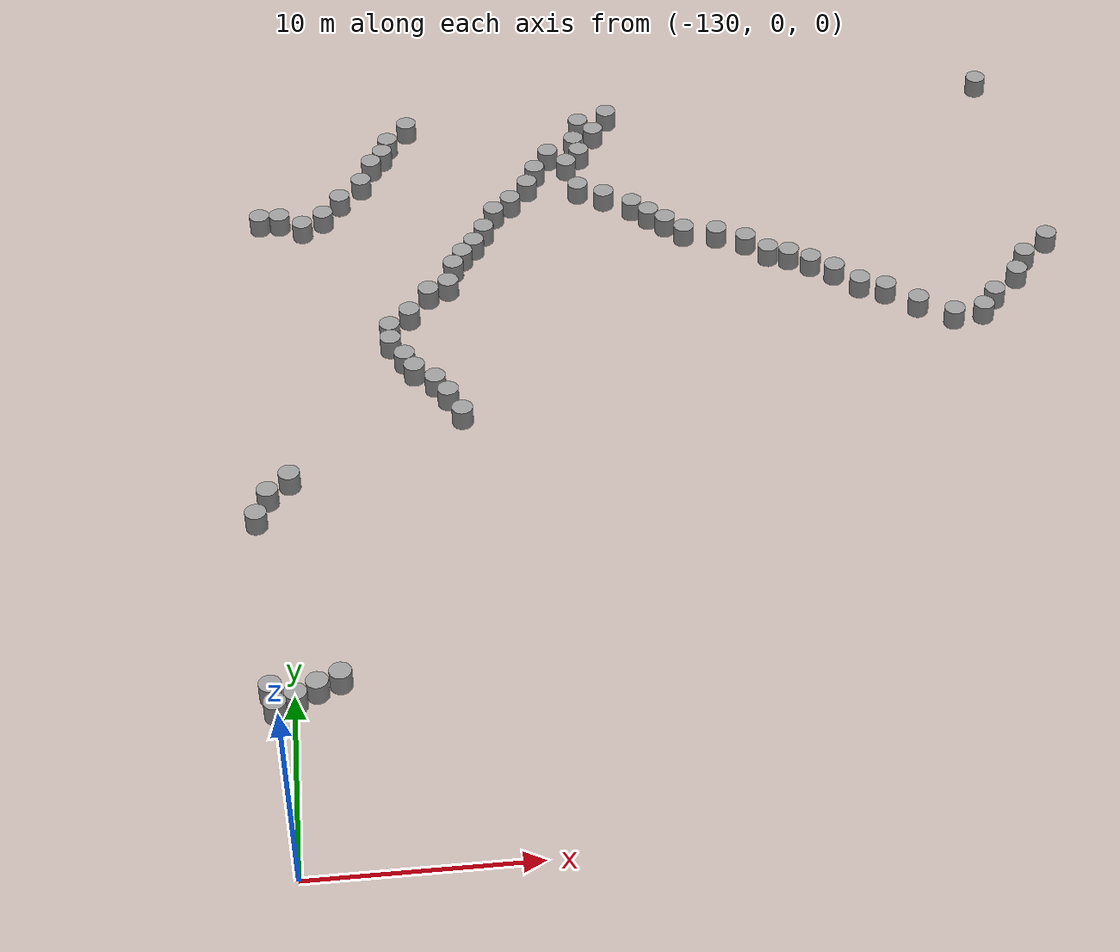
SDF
<sdf version="1.7">
 <world name="default">
  <model name="unit_cylinder_85_clone_169">
   <pose>-93.0864 49.941 0.450468 4.6e-05 3.4e-05 0.000708</pose>
   <link name="link">
    <inertial>
     <mass>1</mass>
     <inertia><ixx>0.145833</ixx><ixy>0</ixy><ixz>0</ixz><iyy>0.145833</iyy><iyz>0</iyz><izz>0.125</izz></inertia>
    </inertial>
    <collision name="collision">
     <geometry><cylinder><radius>0.5</radius><length>1</length></cylinder></geometry>
    </collision>
    <visual name="visual">
     <geometry><cylinder><radius>0.5</radius><length>1</length></cylinder></geometry>
     <material>
      <script><name>Gazebo/Grey</name><uri>file://media/materials/scripts/gazebo.material</uri></script>
     </material>
    </visual>
   </link>
  </model>
  <model name="unit_cylinder_85_clone_179">
   <pose>-97.6042 31.2876 0.452417 0.00044 -0.000331 0.002353</pose>
   <link name="link">
    <inertial>
     <mass>1</mass>
     <inertia><ixx>0.145833</ixx><ixy>0</ixy><ixz>0</ixz><iyy>0.145833</iyy><iyz>0</iyz><izz>0.125</izz></inertia>
    </inertial>
    <collision name="collision">
     <geometry><cylinder><radius>0.5</radius><length>1</length></cylinder></geometry>
    </collision>
    <visual name="visual">
     <geometry><cylinder><radius>0.5</radius><length>1</length></cylinder></geometry>
     <material>
      <script><name>Gazebo/Grey</name><uri>file://media/materials/scripts/gazebo.material</uri></script>
     </material>
    </visual>
   </link>
  </model>
  <model name="unit_cylinder_85_clone_180">
   <pose>-96.112 31.4999 0.451608 0.001585 0.002803 3.4e-05</pose>
   <link name="link">
    <inertial>
     <mass>1</mass>
     <inertia><ixx>0.145833</ixx><ixy>0</ixy><ixz>0</ixz><iyy>0.145833</iyy><iyz>0</iyz><izz>0.125</izz></inertia>
    </inertial>
    <collision name="collision">
     <geometry><cylinder><radius>0.5</radius><length>1</length></cylinder></geometry>
    </collision>
    <visual name="visual">
     <geometry><cylinder><radius>0.5</radius><length>1</length></cylinder></geometry>
     <material>
      <script><name>Gazebo/Grey</name><uri>file://media/materials/scripts/gazebo.material</uri></script>
     </material>
    </visual>
   </link>
  </model>
  <model name="unit_cylinder_85_clone_181">
   <pose>-95.3749 32.5837 0.451322 0.001225 0.002343 -0.000464</pose>
   <link name="link">
    <inertial>
     <mass>1</mass>
     <inertia><ixx>0.145833</ixx><ixy>0</ixy><ixz>0</ixz><iyy>0.145833</iyy><iyz>0</iyz><izz>0.125</izz></inertia>
    </inertial>
    <collision name="collision">
     <geometry><cylinder><radius>0.5</radius><length>1</length></cylinder></geometry>
    </collision>
    <visual name="visual">
     <geometry><cylinder><radius>0.5</radius><length>1</length></cylinder></geometry>
     <material>
      <script><name>Gazebo/Grey</name><uri>file://media/materials/scripts/gazebo.material</uri></script>
     </material>
    </visual>
   </link>
  </model>
  <model name="unit_cylinder_85_clone_183">
   <pose>-93.9988 34 0.450764 0.000925 0.001215 -0.001125</pose>
   <link name="link">
    <inertial>
     <mass>1</mass>
     <inertia><ixx>0.145833</ixx><ixy>0</ixy><ixz>0</ixz><iyy>0.145833</iyy><iyz>0</iyz><izz>0.125</izz></inertia>
    </inertial>
    <collision name="collision">
     <geometry><cylinder><radius>0.5</radius><length>1</length></cylinder></geometry>
    </collision>
    <visual name="visual">
     <geometry><cylinder><radius>0.5</radius><length>1</length></cylinder></geometry>
     <material>
      <script><name>Gazebo/Grey</name><uri>file://media/materials/scripts/gazebo.material</uri></script>
     </material>
    </visual>
   </link>
  </model>
  <model name="unit_cylinder_85_clone_184">
   <pose>-93.3639 35.3282 0.451195 0.001448 0.001901 -0.000784</pose>
   <link name="link">
    <inertial>
     <mass>1</mass>
     <inertia><ixx>0.145833</ixx><ixy>0</ixy><ixz>0</ixz><iyy>0.145833</iyy><iyz>0</iyz><izz>0.125</izz></inertia>
    </inertial>
    <collision name="collision">
     <geometry><cylinder><radius>0.5</radius><length>1</length></cylinder></geometry>
    </collision>
    <visual name="visual">
     <geometry><cylinder><radius>0.5</radius><length>1</length></cylinder></geometry>
     <material>
      <script><name>Gazebo/Grey</name><uri>file://media/materials/scripts/gazebo.material</uri></script>
     </material>
    </visual>
   </link>
  </model>
  <model name="unit_cylinder_85_clone_185">
   <pose>-91.9997 36.5804 0.450742 0.000903 0.001179 0.001529</pose>
   <link name="link">
    <inertial>
     <mass>1</mass>
     <inertia><ixx>0.145833</ixx><ixy>0</ixy><ixz>0</ixz><iyy>0.145833</iyy><iyz>0</iyz><izz>0.125</izz></inertia>
    </inertial>
    <collision name="collision">
     <geometry><cylinder><radius>0.5</radius><length>1</length></cylinder></geometry>
    </collision>
    <visual name="visual">
     <geometry><cylinder><radius>0.5</radius><length>1</length></cylinder></geometry>
     <material>
      <script><name>Gazebo/Grey</name><uri>file://media/materials/scripts/gazebo.material</uri></script>
     </material>
    </visual>
   </link>
  </model>
  <model name="unit_cylinder_85_clone_188">
   <pose>-99.2073 32.3424 0.452379 0.000499 -0.000335 0.000312</pose>
   <link name="link">
    <inertial>
     <mass>1</mass>
     <inertia><ixx>0.145833</ixx><ixy>0</ixy><ixz>0</ixz><iyy>0.145833</iyy><iyz>0</iyz><izz>0.125</izz></inertia>
    </inertial>
    <collision name="collision">
     <geometry><cylinder><radius>0.5</radius><length>1</length></cylinder></geometry>
    </collision>
    <visual name="visual">
     <geometry><cylinder><radius>0.5</radius><length>1</length></cylinder></geometry>
     <material>
      <script><name>Gazebo/Grey</name><uri>file://media/materials/scripts/gazebo.material</uri></script>
     </material>
    </visual>
   </link>
  </model>
  <model name="unit_cylinder_85_clone_191">
   <pose>-100.629 33.5244 0.452501 0.00048 -0.000324 0.000311</pose>
   <link name="link">
    <inertial>
     <mass>1</mass>
     <inertia><ixx>0.145833</ixx><ixy>0</ixy><ixz>0</ixz><iyy>0.145833</iyy><iyz>0</iyz><izz>0.125</izz></inertia>
    </inertial>
    <collision name="collision">
     <geometry><cylinder><radius>0.5</radius><length>1</length></cylinder></geometry>
    </collision>
    <visual name="visual">
     <geometry><cylinder><radius>0.5</radius><length>1</length></cylinder></geometry>
     <material>
      <script><name>Gazebo/Grey</name><uri>file://media/materials/scripts/gazebo.material</uri></script>
     </material>
    </visual>
   </link>
  </model>
  <model name="unit_cylinder_85_clone_192">
   <pose>-101.825 34.1088 0.452382 0.000489 -0.000333 0.000312</pose>
   <link name="link">
    <inertial>
     <mass>1</mass>
     <inertia><ixx>0.145833</ixx><ixy>0</ixy><ixz>0</ixz><iyy>0.145833</iyy><iyz>0</iyz><izz>0.125</izz></inertia>
    </inertial>
    <collision name="collision">
     <geometry><cylinder><radius>0.5</radius><length>1</length></cylinder></geometry>
    </collision>
    <visual name="visual">
     <geometry><cylinder><radius>0.5</radius><length>1</length></cylinder></geometry>
     <material>
      <script><name>Gazebo/Grey</name><uri>file://media/materials/scripts/gazebo.material</uri></script>
     </material>
    </visual>
   </link>
  </model>
  <model name="unit_cylinder_85_clone_193">
   <pose>-102.927 35.2056 0.452559 0.00012 -6.8e-05 -0.000427</pose>
   <link name="link">
    <inertial>
     <mass>1</mass>
     <inertia><ixx>0.145833</ixx><ixy>0</ixy><ixz>0</ixz><iyy>0.145833</iyy><iyz>0</iyz><izz>0.125</izz></inertia>
    </inertial>
    <collision name="collision">
     <geometry><cylinder><radius>0.5</radius><length>1</length></cylinder></geometry>
    </collision>
    <visual name="visual">
     <geometry><cylinder><radius>0.5</radius><length>1</length></cylinder></geometry>
     <material>
      <script><name>Gazebo/Grey</name><uri>file://media/materials/scripts/gazebo.material</uri></script>
     </material>
    </visual>
   </link>
  </model>
  <model name="unit_cylinder_85_clone_194">
   <pose>-104 36.0004 0.452549 -0.000327 0.000219 -0.000733</pose>
   <link name="link">
    <inertial>
     <mass>1</mass>
     <inertia><ixx>0.145833</ixx><ixy>0</ixy><ixz>0</ixz><iyy>0.145833</iyy><iyz>0</iyz><izz>0.125</izz></inertia>
    </inertial>
    <collision name="collision">
     <geometry><cylinder><radius>0.5</radius><length>1</length></cylinder></geometry>
    </collision>
    <visual name="visual">
     <geometry><cylinder><radius>0.5</radius><length>1</length></cylinder></geometry>
     <material>
      <script><name>Gazebo/Grey</name><uri>file://media/materials/scripts/gazebo.material</uri></script>
     </material>
    </visual>
   </link>
  </model>
  <model name="unit_cylinder_85_clone_195">
   <pose>-105.005 36.6273 0.452557 -4.1e-05 2.6e-05 0.000346</pose>
   <link name="link">
    <inertial>
     <mass>1</mass>
     <inertia><ixx>0.145833</ixx><ixy>0</ixy><ixz>0</ixz><iyy>0.145833</iyy><iyz>0</iyz><izz>0.125</izz></inertia>
    </inertial>
    <collision name="collision">
     <geometry><cylinder><radius>0.5</radius><length>1</length></cylinder></geometry>
    </collision>
    <visual name="visual">
     <geometry><cylinder><radius>0.5</radius><length>1</length></cylinder></geometry>
     <material>
      <script><name>Gazebo/Grey</name><uri>file://media/materials/scripts/gazebo.material</uri></script>
     </material>
    </visual>
   </link>
  </model>
  <model name="unit_cylinder_85_clone_196">
   <pose>-106 36.9996 0.452429 0.000493 -0.000331 0.000308</pose>
   <link name="link">
    <inertial>
     <mass>1</mass>
     <inertia><ixx>0.145833</ixx><ixy>0</ixy><ixz>0</ixz><iyy>0.145833</iyy><iyz>0</iyz><izz>0.125</izz></inertia>
    </inertial>
    <collision name="collision">
     <geometry><cylinder><radius>0.5</radius><length>1</length></cylinder></geometry>
    </collision>
    <visual name="visual">
     <geometry><cylinder><radius>0.5</radius><length>1</length></cylinder></geometry>
     <material>
      <script><name>Gazebo/Grey</name><uri>file://media/materials/scripts/gazebo.material</uri></script>
     </material>
    </visual>
   </link>
  </model>
  <model name="unit_cylinder_85_clone_197">
   <pose>-107 38.0001 0.452577 -0.0001 7.5e-05 -0.000249</pose>
   <link name="link">
    <inertial>
     <mass>1</mass>
     <inertia><ixx>0.145833</ixx><ixy>0</ixy><ixz>0</ixz><iyy>0.145833</iyy><iyz>0</iyz><izz>0.125</izz></inertia>
    </inertial>
    <collision name="collision">
     <geometry><cylinder><radius>0.5</radius><length>1</length></cylinder></geometry>
    </collision>
    <visual name="visual">
     <geometry><cylinder><radius>0.5</radius><length>1</length></cylinder></geometry>
     <material>
      <script><name>Gazebo/Grey</name><uri>file://media/materials/scripts/gazebo.material</uri></script>
     </material>
    </visual>
   </link>
  </model>
  <model name="unit_cylinder_85_clone_198">
   <pose>-108.383 38.7069 0.452489 0.000489 -0.000321 0.00032</pose>
   <link name="link">
    <inertial>
     <mass>1</mass>
     <inertia><ixx>0.145833</ixx><ixy>0</ixy><ixz>0</ixz><iyy>0.145833</iyy><iyz>0</iyz><izz>0.125</izz></inertia>
    </inertial>
    <collision name="collision">
     <geometry><cylinder><radius>0.5</radius><length>1</length></cylinder></geometry>
    </collision>
    <visual name="visual">
     <geometry><cylinder><radius>0.5</radius><length>1</length></cylinder></geometry>
     <material>
      <script><name>Gazebo/Grey</name><uri>file://media/materials/scripts/gazebo.material</uri></script>
     </material>
    </visual>
   </link>
  </model>
  <model name="unit_cylinder_85_clone_199">
   <pose>-110 38.9998 0.452093 0.000497 -0.000331 0.000728</pose>
   <link name="link">
    <inertial>
     <mass>1</mass>
     <inertia><ixx>0.145833</ixx><ixy>0</ixy><ixz>0</ixz><iyy>0.145833</iyy><iyz>0</iyz><izz>0.125</izz></inertia>
    </inertial>
    <collision name="collision">
     <geometry><cylinder><radius>0.5</radius><length>1</length></cylinder></geometry>
    </collision>
    <visual name="visual">
     <geometry><cylinder><radius>0.5</radius><length>1</length></cylinder></geometry>
     <material>
      <script><name>Gazebo/Grey</name><uri>file://media/materials/scripts/gazebo.material</uri></script>
     </material>
    </visual>
   </link>
  </model>
  <model name="unit_cylinder_85_clone_200">
   <pose>-111.63 40.5726 0.452325 0.000489 -0.00033 0.006329</pose>
   <link name="link">
    <inertial>
     <mass>1</mass>
     <inertia><ixx>0.145833</ixx><ixy>0</ixy><ixz>0</ixz><iyy>0.145833</iyy><iyz>0</iyz><izz>0.125</izz></inertia>
    </inertial>
    <collision name="collision">
     <geometry><cylinder><radius>0.5</radius><length>1</length></cylinder></geometry>
    </collision>
    <visual name="visual">
     <geometry><cylinder><radius>0.5</radius><length>1</length></cylinder></geometry>
     <material>
      <script><name>Gazebo/Grey</name><uri>file://media/materials/scripts/gazebo.material</uri></script>
     </material>
    </visual>
   </link>
  </model>
  <model name="unit_cylinder_85_clone_201">
   <pose>-112.398 41.3504 0.452455 0.00049 -0.000326 0.000318</pose>
   <link name="link">
    <inertial>
     <mass>1</mass>
     <inertia><ixx>0.145833</ixx><ixy>0</ixy><ixz>0</ixz><iyy>0.145833</iyy><iyz>0</iyz><izz>0.125</izz></inertia>
    </inertial>
    <collision name="collision">
     <geometry><cylinder><radius>0.5</radius><length>1</length></cylinder></geometry>
    </collision>
    <visual name="visual">
     <geometry><cylinder><radius>0.5</radius><length>1</length></cylinder></geometry>
     <material>
      <script><name>Gazebo/Grey</name><uri>file://media/materials/scripts/gazebo.material</uri></script>
     </material>
    </visual>
   </link>
  </model>
  <model name="unit_cylinder_85_clone_202">
   <pose>-110.859 39.8685 0.452239 0.000498 -0.000337 0.003778</pose>
   <link name="link">
    <inertial>
     <mass>1</mass>
     <inertia><ixx>0.145833</ixx><ixy>0</ixy><ixz>0</ixz><iyy>0.145833</iyy><iyz>0</iyz><izz>0.125</izz></inertia>
    </inertial>
    <collision name="collision">
     <geometry><cylinder><radius>0.5</radius><length>1</length></cylinder></geometry>
    </collision>
    <visual name="visual">
     <geometry><cylinder><radius>0.5</radius><length>1</length></cylinder></geometry>
     <material>
      <script><name>Gazebo/Grey</name><uri>file://media/materials/scripts/gazebo.material</uri></script>
     </material>
    </visual>
   </link>
  </model>
  <model name="unit_cylinder_85_clone_203">
   <pose>-113.747 42.2589 0.452459 0.000493 -0.000332 0.000322</pose>
   <link name="link">
    <inertial>
     <mass>1</mass>
     <inertia><ixx>0.145833</ixx><ixy>0</ixy><ixz>0</ixz><iyy>0.145833</iyy><iyz>0</iyz><izz>0.125</izz></inertia>
    </inertial>
    <collision name="collision">
     <geometry><cylinder><radius>0.5</radius><length>1</length></cylinder></geometry>
    </collision>
    <visual name="visual">
     <geometry><cylinder><radius>0.5</radius><length>1</length></cylinder></geometry>
     <material>
      <script><name>Gazebo/Grey</name><uri>file://media/materials/scripts/gazebo.material</uri></script>
     </material>
    </visual>
   </link>
  </model>
  <model name="unit_cylinder_85_clone_204">
   <pose>-115 42.9996 0.452408 0.000488 -0.000334 0.000321</pose>
   <link name="link">
    <inertial>
     <mass>1</mass>
     <inertia><ixx>0.145833</ixx><ixy>0</ixy><ixz>0</ixz><iyy>0.145833</iyy><iyz>0</iyz><izz>0.125</izz></inertia>
    </inertial>
    <collision name="collision">
     <geometry><cylinder><radius>0.5</radius><length>1</length></cylinder></geometry>
    </collision>
    <visual name="visual">
     <geometry><cylinder><radius>0.5</radius><length>1</length></cylinder></geometry>
     <material>
      <script><name>Gazebo/Grey</name><uri>file://media/materials/scripts/gazebo.material</uri></script>
     </material>
    </visual>
   </link>
  </model>
  <model name="unit_cylinder_85_clone_205">
   <pose>-115.428 45.0016 0.451823 -0.000776 -0.000836 0.000512</pose>
   <link name="link">
    <inertial>
     <mass>1</mass>
     <inertia><ixx>0.145833</ixx><ixy>0</ixy><ixz>0</ixz><iyy>0.145833</iyy><iyz>0</iyz><izz>0.125</izz></inertia>
    </inertial>
    <collision name="collision">
     <geometry><cylinder><radius>0.5</radius><length>1</length></cylinder></geometry>
    </collision>
    <visual name="visual">
     <geometry><cylinder><radius>0.5</radius><length>1</length></cylinder></geometry>
     <material>
      <script><name>Gazebo/Grey</name><uri>file://media/materials/scripts/gazebo.material</uri></script>
     </material>
    </visual>
   </link>
  </model>
  <model name="unit_cylinder_85_clone_206">
   <pose>-114.701 45.8839 0.45202 -0.000169 -0.000419 -0.225801</pose>
   <link name="link">
    <inertial>
     <mass>1</mass>
     <inertia><ixx>0.145833</ixx><ixy>0</ixy><ixz>0</ixz><iyy>0.145833</iyy><iyz>0</iyz><izz>0.125</izz></inertia>
    </inertial>
    <collision name="collision">
     <geometry><cylinder><radius>0.5</radius><length>1</length></cylinder></geometry>
    </collision>
    <visual name="visual">
     <geometry><cylinder><radius>0.5</radius><length>1</length></cylinder></geometry>
     <material>
      <script><name>Gazebo/Grey</name><uri>file://media/materials/scripts/gazebo.material</uri></script>
     </material>
    </visual>
   </link>
  </model>
  <model name="unit_cylinder_85_clone_207">
   <pose>-113.814 47.5704 0.451488 -0.000368 -0.000311 0.001697</pose>
   <link name="link">
    <inertial>
     <mass>1</mass>
     <inertia><ixx>0.145833</ixx><ixy>0</ixy><ixz>0</ixz><iyy>0.145833</iyy><iyz>0</iyz><izz>0.125</izz></inertia>
    </inertial>
    <collision name="collision">
     <geometry><cylinder><radius>0.5</radius><length>1</length></cylinder></geometry>
    </collision>
    <visual name="visual">
     <geometry><cylinder><radius>0.5</radius><length>1</length></cylinder></geometry>
     <material>
      <script><name>Gazebo/Grey</name><uri>file://media/materials/scripts/gazebo.material</uri></script>
     </material>
    </visual>
   </link>
  </model>
  <model name="unit_cylinder_85_clone_208">
   <pose>-112.999 49.0016 0.451267 -1.7e-05 -2.4e-05 -0.006262</pose>
   <link name="link">
    <inertial>
     <mass>1</mass>
     <inertia><ixx>0.145833</ixx><ixy>0</ixy><ixz>0</ixz><iyy>0.145833</iyy><iyz>0</iyz><izz>0.125</izz></inertia>
    </inertial>
    <collision name="collision">
     <geometry><cylinder><radius>0.5</radius><length>1</length></cylinder></geometry>
    </collision>
    <visual name="visual">
     <geometry><cylinder><radius>0.5</radius><length>1</length></cylinder></geometry>
     <material>
      <script><name>Gazebo/Grey</name><uri>file://media/materials/scripts/gazebo.material</uri></script>
     </material>
    </visual>
   </link>
  </model>
  <model name="unit_cylinder_85_clone_209">
   <pose>-117.085 44.6406 0.45124 -9e-06 -1.5e-05 0.000434</pose>
   <link name="link">
    <inertial>
     <mass>1</mass>
     <inertia><ixx>0.145833</ixx><ixy>0</ixy><ixz>0</ixz><iyy>0.145833</iyy><iyz>0</iyz><izz>0.125</izz></inertia>
    </inertial>
    <collision name="collision">
     <geometry><cylinder><radius>0.5</radius><length>1</length></cylinder></geometry>
    </collision>
    <visual name="visual">
     <geometry><cylinder><radius>0.5</radius><length>1</length></cylinder></geometry>
     <material>
      <script><name>Gazebo/Grey</name><uri>file://media/materials/scripts/gazebo.material</uri></script>
     </material>
    </visual>
   </link>
  </model>
  <model name="unit_cylinder_85_clone_210">
   <pose>-117.568 43.4675 0.451235 -8e-06 -1.4e-05 0.000625</pose>
   <link name="link">
    <inertial>
     <mass>1</mass>
     <inertia><ixx>0.145833</ixx><ixy>0</ixy><ixz>0</ixz><iyy>0.145833</iyy><iyz>0</iyz><izz>0.125</izz></inertia>
    </inertial>
    <collision name="collision">
     <geometry><cylinder><radius>0.5</radius><length>1</length></cylinder></geometry>
    </collision>
    <visual name="visual">
     <geometry><cylinder><radius>0.5</radius><length>1</length></cylinder></geometry>
     <material>
      <script><name>Gazebo/Grey</name><uri>file://media/materials/scripts/gazebo.material</uri></script>
     </material>
    </visual>
   </link>
  </model>
  <model name="unit_cylinder_85_clone_211">
   <pose>-118.512 42.248 0.451246 -1.5e-05 -6e-06 0.000564</pose>
   <link name="link">
    <inertial>
     <mass>1</mass>
     <inertia><ixx>0.145833</ixx><ixy>0</ixy><ixz>0</ixz><iyy>0.145833</iyy><iyz>0</iyz><izz>0.125</izz></inertia>
    </inertial>
    <collision name="collision">
     <geometry><cylinder><radius>0.5</radius><length>1</length></cylinder></geometry>
    </collision>
    <visual name="visual">
     <geometry><cylinder><radius>0.5</radius><length>1</length></cylinder></geometry>
     <material>
      <script><name>Gazebo/Grey</name><uri>file://media/materials/scripts/gazebo.material</uri></script>
     </material>
    </visual>
   </link>
  </model>
  <model name="unit_cylinder_85_clone_212">
   <pose>-116.309 45.9433 0.451246 -2e-06 -4e-06 0.000274</pose>
   <link name="link">
    <inertial>
     <mass>1</mass>
     <inertia><ixx>0.145833</ixx><ixy>0</ixy><ixz>0</ixz><iyy>0.145833</iyy><iyz>0</iyz><izz>0.125</izz></inertia>
    </inertial>
    <collision name="collision">
     <geometry><cylinder><radius>0.5</radius><length>1</length></cylinder></geometry>
    </collision>
    <visual name="visual">
     <geometry><cylinder><radius>0.5</radius><length>1</length></cylinder></geometry>
     <material>
      <script><name>Gazebo/Grey</name><uri>file://media/materials/scripts/gazebo.material</uri></script>
     </material>
    </visual>
   </link>
  </model>
  <model name="unit_cylinder_85_clone_213">
   <pose>-114.894 46.865 0.451385 -0.000267 -5.8e-05 0.027425</pose>
   <link name="link">
    <inertial>
     <mass>1</mass>
     <inertia><ixx>0.145833</ixx><ixy>0</ixy><ixz>0</ixz><iyy>0.145833</iyy><iyz>0</iyz><izz>0.125</izz></inertia>
    </inertial>
    <collision name="collision">
     <geometry><cylinder><radius>0.5</radius><length>1</length></cylinder></geometry>
    </collision>
    <visual name="visual">
     <geometry><cylinder><radius>0.5</radius><length>1</length></cylinder></geometry>
     <material>
      <script><name>Gazebo/Grey</name><uri>file://media/materials/scripts/gazebo.material</uri></script>
     </material>
    </visual>
   </link>
  </model>
  <model name="unit_cylinder_85_clone_214">
   <pose>-114.527 48.381 0.451236 -6e-06 -1.4e-05 0.000504</pose>
   <link name="link">
    <inertial>
     <mass>1</mass>
     <inertia><ixx>0.145833</ixx><ixy>0</ixy><ixz>0</ixz><iyy>0.145833</iyy><iyz>0</iyz><izz>0.125</izz></inertia>
    </inertial>
    <collision name="collision">
     <geometry><cylinder><radius>0.5</radius><length>1</length></cylinder></geometry>
    </collision>
    <visual name="visual">
     <geometry><cylinder><radius>0.5</radius><length>1</length></cylinder></geometry>
     <material>
      <script><name>Gazebo/Grey</name><uri>file://media/materials/scripts/gazebo.material</uri></script>
     </material>
    </visual>
   </link>
  </model>
  <model name="unit_cylinder_85_clone_215">
   <pose>-119.407 41.4397 0.45126 1.7e-05 2.8e-05 -0.000778</pose>
   <link name="link">
    <inertial>
     <mass>1</mass>
     <inertia><ixx>0.145833</ixx><ixy>0</ixy><ixz>0</ixz><iyy>0.145833</iyy><iyz>0</iyz><izz>0.125</izz></inertia>
    </inertial>
    <collision name="collision">
     <geometry><cylinder><radius>0.5</radius><length>1</length></cylinder></geometry>
    </collision>
    <visual name="visual">
     <geometry><cylinder><radius>0.5</radius><length>1</length></cylinder></geometry>
     <material>
      <script><name>Gazebo/Grey</name><uri>file://media/materials/scripts/gazebo.material</uri></script>
     </material>
    </visual>
   </link>
  </model>
  <model name="unit_cylinder_85_clone_216">
   <pose>-119.999 40.0914 0.451242 -6e-06 -9e-06 0.001715</pose>
   <link name="link">
    <inertial>
     <mass>1</mass>
     <inertia><ixx>0.145833</ixx><ixy>0</ixy><ixz>0</ixz><iyy>0.145833</iyy><iyz>0</iyz><izz>0.125</izz></inertia>
    </inertial>
    <collision name="collision">
     <geometry><cylinder><radius>0.5</radius><length>1</length></cylinder></geometry>
    </collision>
    <visual name="visual">
     <geometry><cylinder><radius>0.5</radius><length>1</length></cylinder></geometry>
     <material>
      <script><name>Gazebo/Grey</name><uri>file://media/materials/scripts/gazebo.material</uri></script>
     </material>
    </visual>
   </link>
  </model>
  <model name="unit_cylinder_85_clone_217">
   <pose>-120.552 39.0404 0.451452 -0.000272 -0.000349 -0.006349</pose>
   <link name="link">
    <inertial>
     <mass>1</mass>
     <inertia><ixx>0.145833</ixx><ixy>0</ixy><ixz>0</ixz><iyy>0.145833</iyy><iyz>0</iyz><izz>0.125</izz></inertia>
    </inertial>
    <collision name="collision">
     <geometry><cylinder><radius>0.5</radius><length>1</length></cylinder></geometry>
    </collision>
    <visual name="visual">
     <geometry><cylinder><radius>0.5</radius><length>1</length></cylinder></geometry>
     <material>
      <script><name>Gazebo/Grey</name><uri>file://media/materials/scripts/gazebo.material</uri></script>
     </material>
    </visual>
   </link>
  </model>
  <model name="unit_cylinder_85_clone_218">
   <pose>-121.181 38.2469 0.45145 -0.000328 -0.000271 0.045346</pose>
   <link name="link">
    <inertial>
     <mass>1</mass>
     <inertia><ixx>0.145833</ixx><ixy>0</ixy><ixz>0</ixz><iyy>0.145833</iyy><iyz>0</iyz><izz>0.125</izz></inertia>
    </inertial>
    <collision name="collision">
     <geometry><cylinder><radius>0.5</radius><length>1</length></cylinder></geometry>
    </collision>
    <visual name="visual">
     <geometry><cylinder><radius>0.5</radius><length>1</length></cylinder></geometry>
     <material>
      <script><name>Gazebo/Grey</name><uri>file://media/materials/scripts/gazebo.material</uri></script>
     </material>
    </visual>
   </link>
  </model>
  <model name="unit_cylinder_85_clone_219">
   <pose>-121.675 37.377 0.451533 -0.00034 -0.000525 0.008987</pose>
   <link name="link">
    <inertial>
     <mass>1</mass>
     <inertia><ixx>0.145833</ixx><ixy>0</ixy><ixz>0</ixz><iyy>0.145833</iyy><iyz>0</iyz><izz>0.125</izz></inertia>
    </inertial>
    <collision name="collision">
     <geometry><cylinder><radius>0.5</radius><length>1</length></cylinder></geometry>
    </collision>
    <visual name="visual">
     <geometry><cylinder><radius>0.5</radius><length>1</length></cylinder></geometry>
     <material>
      <script><name>Gazebo/Grey</name><uri>file://media/materials/scripts/gazebo.material</uri></script>
     </material>
    </visual>
   </link>
  </model>
  <model name="unit_cylinder_85_clone_220">
   <pose>-122 35.9996 0.451593 0.000376 0.00031 0.000332</pose>
   <link name="link">
    <inertial>
     <mass>1</mass>
     <inertia><ixx>0.145833</ixx><ixy>0</ixy><ixz>0</ixz><iyy>0.145833</iyy><iyz>0</iyz><izz>0.125</izz></inertia>
    </inertial>
    <collision name="collision">
     <geometry><cylinder><radius>0.5</radius><length>1</length></cylinder></geometry>
    </collision>
    <visual name="visual">
     <geometry><cylinder><radius>0.5</radius><length>1</length></cylinder></geometry>
     <material>
      <script><name>Gazebo/Grey</name><uri>file://media/materials/scripts/gazebo.material</uri></script>
     </material>
    </visual>
   </link>
  </model>
  <model name="unit_cylinder_85_clone_221">
   <pose>-123 35.4878 0.451502 -0.000235 -0.000412 -7.3e-05</pose>
   <link name="link">
    <inertial>
     <mass>1</mass>
     <inertia><ixx>0.145833</ixx><ixy>0</ixy><ixz>0</ixz><iyy>0.145833</iyy><iyz>0</iyz><izz>0.125</izz></inertia>
    </inertial>
    <collision name="collision">
     <geometry><cylinder><radius>0.5</radius><length>1</length></cylinder></geometry>
    </collision>
    <visual name="visual">
     <geometry><cylinder><radius>0.5</radius><length>1</length></cylinder></geometry>
     <material>
      <script><name>Gazebo/Grey</name><uri>file://media/materials/scripts/gazebo.material</uri></script>
     </material>
    </visual>
   </link>
  </model>
  <model name="unit_cylinder_85_clone_222">
   <pose>-124 33.9997 0.451454 -0.0001 -0.00025 -0.000969</pose>
   <link name="link">
    <inertial>
     <mass>1</mass>
     <inertia><ixx>0.145833</ixx><ixy>0</ixy><ixz>0</ixz><iyy>0.145833</iyy><iyz>0</iyz><izz>0.125</izz></inertia>
    </inertial>
    <collision name="collision">
     <geometry><cylinder><radius>0.5</radius><length>1</length></cylinder></geometry>
    </collision>
    <visual name="visual">
     <geometry><cylinder><radius>0.5</radius><length>1</length></cylinder></geometry>
     <material>
      <script><name>Gazebo/Grey</name><uri>file://media/materials/scripts/gazebo.material</uri></script>
     </material>
    </visual>
   </link>
  </model>
  <model name="unit_cylinder_85_clone_223">
   <pose>-125 33.0001 0.451323 -9.3e-05 -0.0002 0.000447</pose>
   <link name="link">
    <inertial>
     <mass>1</mass>
     <inertia><ixx>0.145833</ixx><ixy>0</ixy><ixz>0</ixz><iyy>0.145833</iyy><iyz>0</iyz><izz>0.125</izz></inertia>
    </inertial>
    <collision name="collision">
     <geometry><cylinder><radius>0.5</radius><length>1</length></cylinder></geometry>
    </collision>
    <visual name="visual">
     <geometry><cylinder><radius>0.5</radius><length>1</length></cylinder></geometry>
     <material>
      <script><name>Gazebo/Grey</name><uri>file://media/materials/scripts/gazebo.material</uri></script>
     </material>
    </visual>
   </link>
  </model>
  <model name="unit_cylinder_85_clone_224">
   <pose>-125 32 0.451216 2.5e-05 0.000145 0.000326</pose>
   <link name="link">
    <inertial>
     <mass>1</mass>
     <inertia><ixx>0.145833</ixx><ixy>0</ixy><ixz>0</ixz><iyy>0.145833</iyy><iyz>0</iyz><izz>0.125</izz></inertia>
    </inertial>
    <collision name="collision">
     <geometry><cylinder><radius>0.5</radius><length>1</length></cylinder></geometry>
    </collision>
    <visual name="visual">
     <geometry><cylinder><radius>0.5</radius><length>1</length></cylinder></geometry>
     <material>
      <script><name>Gazebo/Grey</name><uri>file://media/materials/scripts/gazebo.material</uri></script>
     </material>
    </visual>
   </link>
  </model>
  <model name="unit_cylinder_85_clone_225">
   <pose>-123.952 29.9019 0.45122 -6.6e-05 9.6e-05 0.000208</pose>
   <link name="link">
    <inertial>
     <mass>1</mass>
     <inertia><ixx>0.145833</ixx><ixy>0</ixy><ixz>0</ixz><iyy>0.145833</iyy><iyz>0</iyz><izz>0.125</izz></inertia>
    </inertial>
    <collision name="collision">
     <geometry><cylinder><radius>0.5</radius><length>1</length></cylinder></geometry>
    </collision>
    <visual name="visual">
     <geometry><cylinder><radius>0.5</radius><length>1</length></cylinder></geometry>
     <material>
      <script><name>Gazebo/Grey</name><uri>file://media/materials/scripts/gazebo.material</uri></script>
     </material>
    </visual>
   </link>
  </model>
  <model name="unit_cylinder_85_clone_226">
   <pose>-122.445 28.0003 0.451165 -4.6e-05 9e-05 0.000787</pose>
   <link name="link">
    <inertial>
     <mass>1</mass>
     <inertia><ixx>0.145833</ixx><ixy>0</ixy><ixz>0</ixz><iyy>0.145833</iyy><iyz>0</iyz><izz>0.125</izz></inertia>
    </inertial>
    <collision name="collision">
     <geometry><cylinder><radius>0.5</radius><length>1</length></cylinder></geometry>
    </collision>
    <visual name="visual">
     <geometry><cylinder><radius>0.5</radius><length>1</length></cylinder></geometry>
     <material>
      <script><name>Gazebo/Grey</name><uri>file://media/materials/scripts/gazebo.material</uri></script>
     </material>
    </visual>
   </link>
  </model>
  <model name="unit_cylinder_85_clone_227">
   <pose>-121.852 26.6105 0.451195 -5.3e-05 9e-05 -0.00018</pose>
   <link name="link">
    <inertial>
     <mass>1</mass>
     <inertia><ixx>0.145833</ixx><ixy>0</ixy><ixz>0</ixz><iyy>0.145833</iyy><iyz>0</iyz><izz>0.125</izz></inertia>
    </inertial>
    <collision name="collision">
     <geometry><cylinder><radius>0.5</radius><length>1</length></cylinder></geometry>
    </collision>
    <visual name="visual">
     <geometry><cylinder><radius>0.5</radius><length>1</length></cylinder></geometry>
     <material>
      <script><name>Gazebo/Grey</name><uri>file://media/materials/scripts/gazebo.material</uri></script>
     </material>
    </visual>
   </link>
  </model>
  <model name="unit_cylinder_85_clone_228">
   <pose>-123 29.0001 0.451173 -5.6e-05 8.1e-05 0.000343</pose>
   <link name="link">
    <inertial>
     <mass>1</mass>
     <inertia><ixx>0.145833</ixx><ixy>0</ixy><ixz>0</ixz><iyy>0.145833</iyy><iyz>0</iyz><izz>0.125</izz></inertia>
    </inertial>
    <collision name="collision">
     <geometry><cylinder><radius>0.5</radius><length>1</length></cylinder></geometry>
    </collision>
    <visual name="visual">
     <geometry><cylinder><radius>0.5</radius><length>1</length></cylinder></geometry>
     <material>
      <script><name>Gazebo/Grey</name><uri>file://media/materials/scripts/gazebo.material</uri></script>
     </material>
    </visual>
   </link>
  </model>
  <model name="unit_cylinder_85_clone_229">
   <pose>-124.38 30.8142 0.451176 -5.9e-05 8.7e-05 0.004741</pose>
   <link name="link">
    <inertial>
     <mass>1</mass>
     <inertia><ixx>0.145833</ixx><ixy>0</ixy><ixz>0</ixz><iyy>0.145833</iyy><iyz>0</iyz><izz>0.125</izz></inertia>
    </inertial>
    <collision name="collision">
     <geometry><cylinder><radius>0.5</radius><length>1</length></cylinder></geometry>
    </collision>
    <visual name="visual">
     <geometry><cylinder><radius>0.5</radius><length>1</length></cylinder></geometry>
     <material>
      <script><name>Gazebo/Grey</name><uri>file://media/materials/scripts/gazebo.material</uri></script>
     </material>
    </visual>
   </link>
  </model>
  <model name="unit_cylinder_85_clone_238">
   <pose>-123.494 49.0002 0.45 0 -0 0.000681</pose>
   <link name="link">
    <inertial>
     <mass>1</mass>
     <inertia><ixx>0.145833</ixx><ixy>0</ixy><ixz>0</ixz><iyy>0.145833</iyy><iyz>0</iyz><izz>0.125</izz></inertia>
    </inertial>
    <collision name="collision">
     <geometry><cylinder><radius>0.5</radius><length>1</length></cylinder></geometry>
    </collision>
    <visual name="visual">
     <geometry><cylinder><radius>0.5</radius><length>1</length></cylinder></geometry>
     <material>
      <script><name>Gazebo/Grey</name><uri>file://media/materials/scripts/gazebo.material</uri></script>
     </material>
    </visual>
   </link>
  </model>
  <model name="unit_cylinder_85_clone_239">
   <pose>-124.524 47.748 0.45 -0 -0 -0.001255</pose>
   <link name="link">
    <inertial>
     <mass>1</mass>
     <inertia><ixx>0.145833</ixx><ixy>0</ixy><ixz>0</ixz><iyy>0.145833</iyy><iyz>0</iyz><izz>0.125</izz></inertia>
    </inertial>
    <collision name="collision">
     <geometry><cylinder><radius>0.5</radius><length>1</length></cylinder></geometry>
    </collision>
    <visual name="visual">
     <geometry><cylinder><radius>0.5</radius><length>1</length></cylinder></geometry>
     <material>
      <script><name>Gazebo/Grey</name><uri>file://media/materials/scripts/gazebo.material</uri></script>
     </material>
    </visual>
   </link>
  </model>
  <model name="unit_cylinder_85_clone_240">
   <pose>-125.436 45.9954 0.45 -0 -0 -0.000626</pose>
   <link name="link">
    <inertial>
     <mass>1</mass>
     <inertia><ixx>0.145833</ixx><ixy>0</ixy><ixz>0</ixz><iyy>0.145833</iyy><iyz>0</iyz><izz>0.125</izz></inertia>
    </inertial>
    <collision name="collision">
     <geometry><cylinder><radius>0.5</radius><length>1</length></cylinder></geometry>
    </collision>
    <visual name="visual">
     <geometry><cylinder><radius>0.5</radius><length>1</length></cylinder></geometry>
     <material>
      <script><name>Gazebo/Grey</name><uri>file://media/materials/scripts/gazebo.material</uri></script>
     </material>
    </visual>
   </link>
  </model>
  <model name="unit_cylinder_85_clone_241">
   <pose>-126 44.496 0.449995 2e-06 4e-06 0.000362</pose>
   <link name="link">
    <inertial>
     <mass>1</mass>
     <inertia><ixx>0.145833</ixx><ixy>0</ixy><ixz>0</ixz><iyy>0.145833</iyy><iyz>0</iyz><izz>0.125</izz></inertia>
    </inertial>
    <collision name="collision">
     <geometry><cylinder><radius>0.5</radius><length>1</length></cylinder></geometry>
    </collision>
    <visual name="visual">
     <geometry><cylinder><radius>0.5</radius><length>1</length></cylinder></geometry>
     <material>
      <script><name>Gazebo/Grey</name><uri>file://media/materials/scripts/gazebo.material</uri></script>
     </material>
    </visual>
   </link>
  </model>
  <model name="unit_cylinder_85_clone_242">
   <pose>-127.123 43.2607 0.450001 -3e-06 -0 0.000587</pose>
   <link name="link">
    <inertial>
     <mass>1</mass>
     <inertia><ixx>0.145833</ixx><ixy>0</ixy><ixz>0</ixz><iyy>0.145833</iyy><iyz>0</iyz><izz>0.125</izz></inertia>
    </inertial>
    <collision name="collision">
     <geometry><cylinder><radius>0.5</radius><length>1</length></cylinder></geometry>
    </collision>
    <visual name="visual">
     <geometry><cylinder><radius>0.5</radius><length>1</length></cylinder></geometry>
     <material>
      <script><name>Gazebo/Grey</name><uri>file://media/materials/scripts/gazebo.material</uri></script>
     </material>
    </visual>
   </link>
  </model>
  <model name="unit_cylinder_85_clone_243">
   <pose>-128 42.0002 0.450001 -2e-06 2e-06 0.000617</pose>
   <link name="link">
    <inertial>
     <mass>1</mass>
     <inertia><ixx>0.145833</ixx><ixy>0</ixy><ixz>0</ixz><iyy>0.145833</iyy><iyz>0</iyz><izz>0.125</izz></inertia>
    </inertial>
    <collision name="collision">
     <geometry><cylinder><radius>0.5</radius><length>1</length></cylinder></geometry>
    </collision>
    <visual name="visual">
     <geometry><cylinder><radius>0.5</radius><length>1</length></cylinder></geometry>
     <material>
      <script><name>Gazebo/Grey</name><uri>file://media/materials/scripts/gazebo.material</uri></script>
     </material>
    </visual>
   </link>
  </model>
  <model name="unit_cylinder_85_clone_244">
   <pose>-129.058 41.2775 0.450001 0 -2e-06 0.0005</pose>
   <link name="link">
    <inertial>
     <mass>1</mass>
     <inertia><ixx>0.145833</ixx><ixy>0</ixy><ixz>0</ixz><iyy>0.145833</iyy><iyz>0</iyz><izz>0.125</izz></inertia>
    </inertial>
    <collision name="collision">
     <geometry><cylinder><radius>0.5</radius><length>1</length></cylinder></geometry>
    </collision>
    <visual name="visual">
     <geometry><cylinder><radius>0.5</radius><length>1</length></cylinder></geometry>
     <material>
      <script><name>Gazebo/Grey</name><uri>file://media/materials/scripts/gazebo.material</uri></script>
     </material>
    </visual>
   </link>
  </model>
  <model name="unit_cylinder_85_clone_245">
   <pose>-124.84 46.7993 0.449992 3e-06 2e-06 -0.005765</pose>
   <link name="link">
    <inertial>
     <mass>1</mass>
     <inertia><ixx>0.145833</ixx><ixy>0</ixy><ixz>0</ixz><iyy>0.145833</iyy><iyz>0</iyz><izz>0.125</izz></inertia>
    </inertial>
    <collision name="collision">
     <geometry><cylinder><radius>0.5</radius><length>1</length></cylinder></geometry>
    </collision>
    <visual name="visual">
     <geometry><cylinder><radius>0.5</radius><length>1</length></cylinder></geometry>
     <material>
      <script><name>Gazebo/Grey</name><uri>file://media/materials/scripts/gazebo.material</uri></script>
     </material>
    </visual>
   </link>
  </model>
  <model name="unit_cylinder_85_clone_244_clone">
   <pose>-130.191 41.9881 0.45 -0 -0 -0.002926</pose>
   <link name="link">
    <inertial>
     <mass>1</mass>
     <inertia><ixx>0.145833</ixx><ixy>0</ixy><ixz>0</ixz><iyy>0.145833</iyy><iyz>0</iyz><izz>0.125</izz></inertia>
    </inertial>
    <collision name="collision">
     <geometry><cylinder><radius>0.5</radius><length>1</length></cylinder></geometry>
    </collision>
    <visual name="visual">
     <geometry><cylinder><radius>0.5</radius><length>1</length></cylinder></geometry>
     <material>
      <script><name>Gazebo/Grey</name><uri>file://media/materials/scripts/gazebo.material</uri></script>
     </material>
    </visual>
   </link>
  </model>
  <model name="unit_cylinder_85_clone_244_clone_0">
   <pose>-131.191 42.0191 0.449997 3e-06 -1e-06 0.022927</pose>
   <link name="link">
    <inertial>
     <mass>1</mass>
     <inertia><ixx>0.145833</ixx><ixy>0</ixy><ixz>0</ixz><iyy>0.145833</iyy><iyz>0</iyz><izz>0.125</izz></inertia>
    </inertial>
    <collision name="collision">
     <geometry><cylinder><radius>0.5</radius><length>1</length></cylinder></geometry>
    </collision>
    <visual name="visual">
     <geometry><cylinder><radius>0.5</radius><length>1</length></cylinder></geometry>
     <material>
      <script><name>Gazebo/Grey</name><uri>file://media/materials/scripts/gazebo.material</uri></script>
     </material>
    </visual>
   </link>
  </model>
  <model name="unit_cylinder_85_clone_244_clone_73">
   <pose>-130 23 0.451267 0 1e-06 0.000414</pose>
   <link name="link">
    <inertial>
     <mass>1</mass>
     <inertia><ixx>0.145833</ixx><ixy>0</ixy><ixz>0</ixz><iyy>0.145833</iyy><iyz>0</iyz><izz>0.125</izz></inertia>
    </inertial>
    <collision name="collision">
     <geometry><cylinder><radius>0.5</radius><length>1</length></cylinder></geometry>
    </collision>
    <visual name="visual">
     <geometry><cylinder><radius>0.5</radius><length>1</length></cylinder></geometry>
     <material>
      <script><name>Gazebo/Grey</name><uri>file://media/materials/scripts/gazebo.material</uri></script>
     </material>
    </visual>
   </link>
  </model>
  <model name="unit_cylinder_85_clone_244_clone_74">
   <pose>-131 22 0.451267 0 -0 0.000376</pose>
   <link name="link">
    <inertial>
     <mass>1</mass>
     <inertia><ixx>0.145833</ixx><ixy>0</ixy><ixz>0</ixz><iyy>0.145833</iyy><iyz>0</iyz><izz>0.125</izz></inertia>
    </inertial>
    <collision name="collision">
     <geometry><cylinder><radius>0.5</radius><length>1</length></cylinder></geometry>
    </collision>
    <visual name="visual">
     <geometry><cylinder><radius>0.5</radius><length>1</length></cylinder></geometry>
     <material>
      <script><name>Gazebo/Grey</name><uri>file://media/materials/scripts/gazebo.material</uri></script>
     </material>
    </visual>
   </link>
  </model>
  <model name="unit_cylinder_85_clone_244_clone_75">
   <pose>-131.532 20.5597 0.451278 1e-06 4e-06 -0.00285</pose>
   <link name="link">
    <inertial>
     <mass>1</mass>
     <inertia><ixx>0.145833</ixx><ixy>0</ixy><ixz>0</ixz><iyy>0.145833</iyy><iyz>0</iyz><izz>0.125</izz></inertia>
    </inertial>
    <collision name="collision">
     <geometry><cylinder><radius>0.5</radius><length>1</length></cylinder></geometry>
    </collision>
    <visual name="visual">
     <geometry><cylinder><radius>0.5</radius><length>1</length></cylinder></geometry>
     <material>
      <script><name>Gazebo/Grey</name><uri>file://media/materials/scripts/gazebo.material</uri></script>
     </material>
    </visual>
   </link>
  </model>
  <model name="unit_cylinder_85_clone_244_clone_81">
   <pose>-128 10.4454 0.451246 7e-05 7.8e-05 0.000585</pose>
   <link name="link">
    <inertial>
     <mass>1</mass>
     <inertia><ixx>0.145833</ixx><ixy>0</ixy><ixz>0</ixz><iyy>0.145833</iyy><iyz>0</iyz><izz>0.125</izz></inertia>
    </inertial>
    <collision name="collision">
     <geometry><cylinder><radius>0.5</radius><length>1</length></cylinder></geometry>
    </collision>
    <visual name="visual">
     <geometry><cylinder><radius>0.5</radius><length>1</length></cylinder></geometry>
     <material>
      <script><name>Gazebo/Grey</name><uri>file://media/materials/scripts/gazebo.material</uri></script>
     </material>
    </visual>
   </link>
  </model>
  <model name="unit_cylinder_85_clone_244_clone_82">
   <pose>-129 9.99998 0.451243 1.1e-05 7e-06 -0.000156</pose>
   <link name="link">
    <inertial>
     <mass>1</mass>
     <inertia><ixx>0.145833</ixx><ixy>0</ixy><ixz>0</ixz><iyy>0.145833</iyy><iyz>0</iyz><izz>0.125</izz></inertia>
    </inertial>
    <collision name="collision">
     <geometry><cylinder><radius>0.5</radius><length>1</length></cylinder></geometry>
    </collision>
    <visual name="visual">
     <geometry><cylinder><radius>0.5</radius><length>1</length></cylinder></geometry>
     <material>
      <script><name>Gazebo/Grey</name><uri>file://media/materials/scripts/gazebo.material</uri></script>
     </material>
    </visual>
   </link>
  </model>
  <model name="unit_cylinder_85_clone_244_clone_83">
   <pose>-129.928 9.45178 0.451231 2e-06 4e-06 0.0052</pose>
   <link name="link">
    <inertial>
     <mass>1</mass>
     <inertia><ixx>0.145833</ixx><ixy>0</ixy><ixz>0</ixz><iyy>0.145833</iyy><iyz>0</iyz><izz>0.125</izz></inertia>
    </inertial>
    <collision name="collision">
     <geometry><cylinder><radius>0.5</radius><length>1</length></cylinder></geometry>
    </collision>
    <visual name="visual">
     <geometry><cylinder><radius>0.5</radius><length>1</length></cylinder></geometry>
     <material>
      <script><name>Gazebo/Grey</name><uri>file://media/materials/scripts/gazebo.material</uri></script>
     </material>
    </visual>
   </link>
  </model>
  <model name="unit_cylinder_85_clone_244_clone_84">
   <pose>-131 9.99994 0.45128 5.3e-05 2.6e-05 0.00048</pose>
   <link name="link">
    <inertial>
     <mass>1</mass>
     <inertia><ixx>0.145833</ixx><ixy>0</ixy><ixz>0</ixz><iyy>0.145833</iyy><iyz>0</iyz><izz>0.125</izz></inertia>
    </inertial>
    <collision name="collision">
     <geometry><cylinder><radius>0.5</radius><length>1</length></cylinder></geometry>
    </collision>
    <visual name="visual">
     <geometry><cylinder><radius>0.5</radius><length>1</length></cylinder></geometry>
     <material>
      <script><name>Gazebo/Grey</name><uri>file://media/materials/scripts/gazebo.material</uri></script>
     </material>
    </visual>
   </link>
  </model>
  <model name="unit_cylinder_85_clone_244_clone_85">
   <pose>-130.81 8.97401 0.451246 -8e-06 5e-06 -0.038944</pose>
   <link name="link">
    <inertial>
     <mass>1</mass>
     <inertia><ixx>0.145833</ixx><ixy>0</ixy><ixz>0</ixz><iyy>0.145833</iyy><iyz>0</iyz><izz>0.125</izz></inertia>
    </inertial>
    <collision name="collision">
     <geometry><cylinder><radius>0.5</radius><length>1</length></cylinder></geometry>
    </collision>
    <visual name="visual">
     <geometry><cylinder><radius>0.5</radius><length>1</length></cylinder></geometry>
     <material>
      <script><name>Gazebo/Grey</name><uri>file://media/materials/scripts/gazebo.material</uri></script>
     </material>
    </visual>
   </link>
  </model>
 </world>
</sdf>
